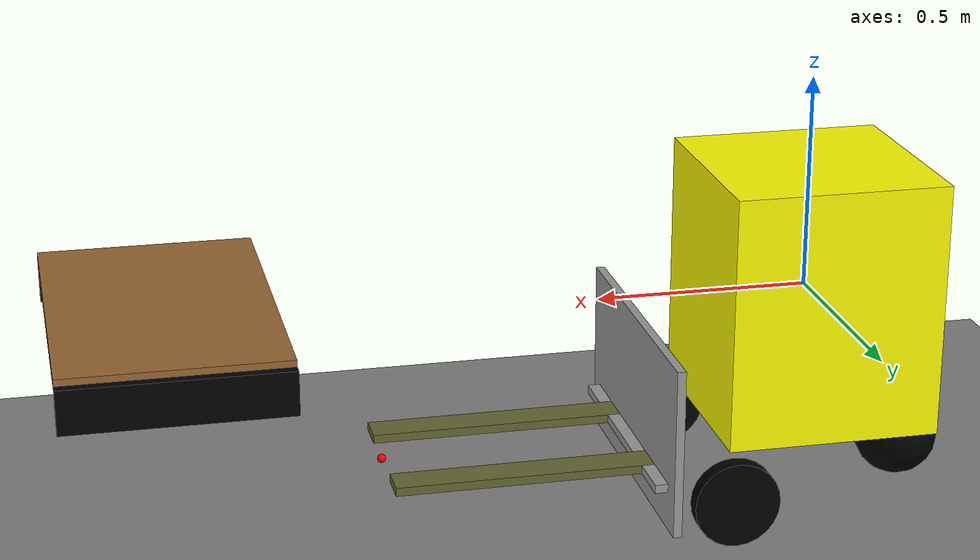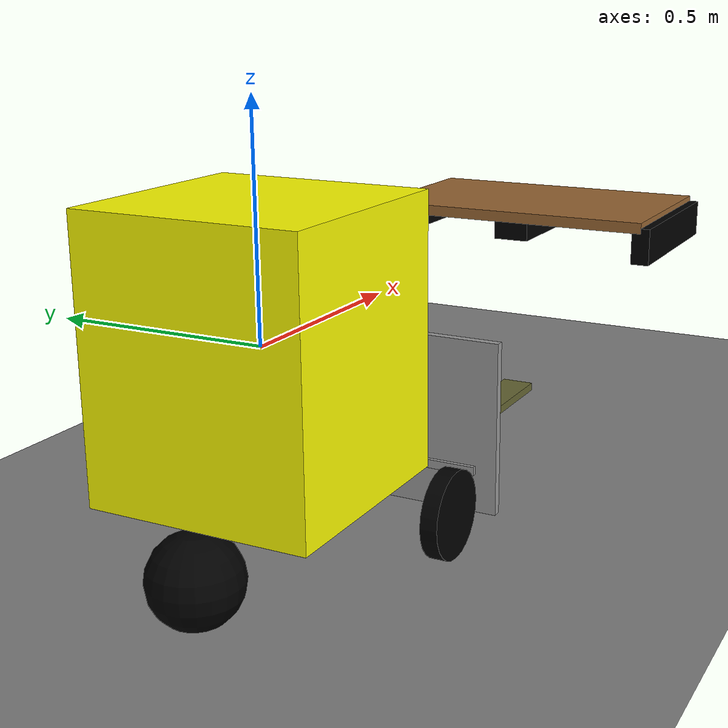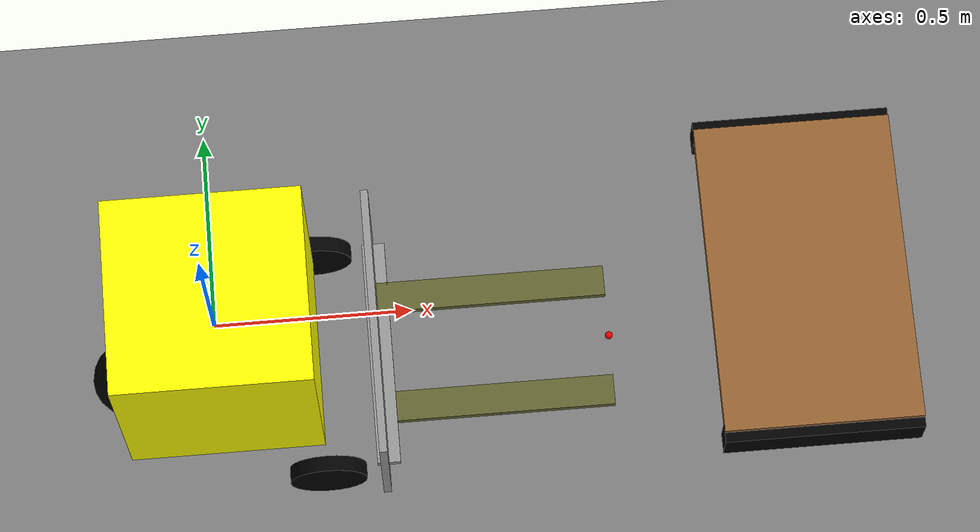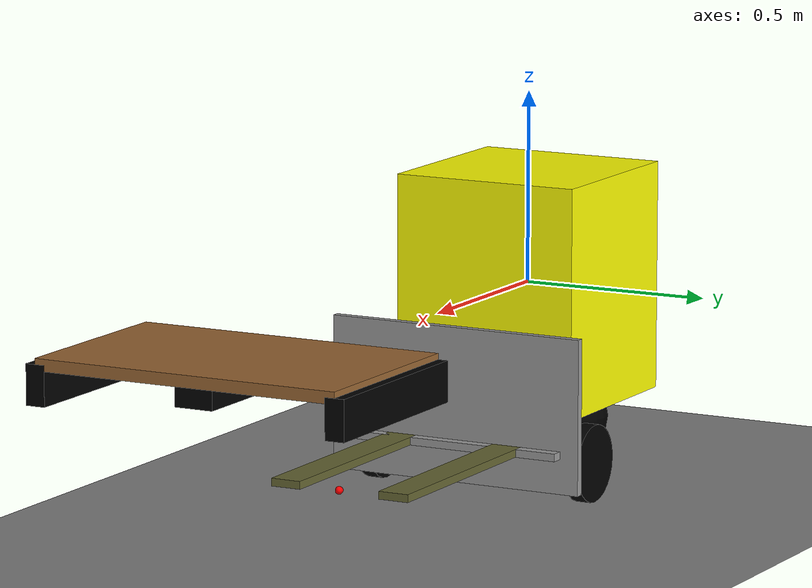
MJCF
<mujoco>
  <option timestep="0.02" density="1.204" viscosity="1.8e-5" integrator="implicit"/>
  <option gravity="0 0 -9.81"/>
  <visual>
    <global elevation="-10"/>
  </visual>
  <default>
    <tendon limited="true" width="0.003" rgba="1 1 1 1"/>
    <geom friction=".2"/>
    <default class="weight">
      <geom rgba=".8 .4 .8 1"/>
      <site rgba=".8 .4 .8 1"/>
    </default>
    <default class="balloon">
      <geom density="0.167" fluidshape="ellipsoid"/>
      <default class="pink">
        <geom rgba="1 .6 .7 1"/>
        <site rgba="1 .6 .7 1"/>
      </default>
      <default class="blue">
        <geom rgba=".3 .7 .9 1"/>
        <site rgba=".3 .7 .9 1"/>
      </default>
      <default class="green">
        <geom rgba=".4 .9 .5 1"/>
        <site rgba=".4 .9 .5 1"/>
      </default>
      <default class="orange">
        <geom rgba="1 .4 0 1"/>
        <site rgba="1 .4 0 1"/>
      </default>
      <default class="black">
        <geom rgba="0 0 0 1"/>
        <site rgba="0 0 0 1"/>
      </default>
      <default class="yellow">
        <geom rgba="1 1 0 1"/>
        <site rgba="1 1 0 1"/>
      </default>

    </default>
  </default>
  <asset>
    <texture name="grid" type="2d" builtin="checker" width="512" height="512" rgb2="0 0 0" rgb1="1 1 1"/>
    <material name="grid" texture="grid" texrepeat="2 2" texuniform="true" reflectance=".6"/>
  </asset>

  <worldbody>
    <geom name="ground" type="plane" size="5 5 .05" pos="0 0 -.5" material="grid"/>
    <body name="pallet" pos="1.5 0 0.0575">
      <freejoint/>
      <geom name="pallet_geom_top" type="box" size="0.25 0.4 0.015" pos="0 0 0.0" mass="0.1" rgba="0.6 0.4 0.2 1" friction="2 0.1 0.1"/>
      <geom name="support_center" type="box" size="0.2 0.05 0.025" pos="0 0 -0.05" mass="0.1" rgba="0 0 0 1"/>
      <geom name="support_left" type="box" size="0.25 0.025 0.05" pos="0 0.4 -0.05" mass="0.1" rgba="0 0 0 1"/>
      <geom name="support_right" type="box" size="0.25 0.025 0.05" pos="0 -0.4 -0.05" mass="0.01" rgba="0 0 0 1"/>
    </body>

    <!-- 本体（ベース） -->
    <body name="forklift_base" pos="0 0 0.0" childclass="yellow">
      <freejoint/>
      <geom name="base" type="box" size="0.25 0.25 0.3" mass="80.0"/>
      <body name="body_guard" pos="0.4 0 -0.25" euler="0 0 0">
        <geom name="body_guard_frame" type="box" size="0.01 0.35 0.2" rgba="0.6 0.6 0.6 1"/>
      </body>

      <!-- フォークリフト機構 -->
      <body name="lift_arm" pos="0.41 0 -0.35" euler="0 0 0">
        <joint name="lift_joint" type="slide" axis="0 0 1" range="-0.1 0.3" damping="0.1" stiffness="1" />
        <geom name="lift_frame" type="box" size="0.03 0.3 0.01" rgba="0.6 0.6 0.6 1"/>

        <!-- フォーク部分 -->
        <body name="forks" pos="0.3 0 0.0" euler="0 90 0">
          <geom name="left_fork"  type="box" size="0.01 0.04 0.3" pos="0 0.15 0" rgba="0.4 0.4 0.2 1" mass="1.0" friction="3 0.2 0.1"/>
          <geom name="right_fork" type="box" size="0.01 0.04 0.3" pos="0 -0.15 0" rgba="0.4 0.4 0.2 1" mass="1.0" friction="3 0.2 0.1"/>
          <site name="fork_tip" pos="0 0 0.3" size="0.01" rgba="1 0 0 1"/>
        </body>
      </body>

      <!-- 前輪 -->
      <body name="left_wheel" pos="0.25 0.3 -0.4" euler="90 0 0" childclass="black">
        <joint name="left_wheel_hinge" type="hinge" axis="0 0 -1" damping="0.1"/>
        <geom name="left_wheel_geom" type="cylinder" size="0.1 0.02" density="800" friction="1.2"/>
      </body>

      <body name="right_wheel" pos="0.25 -0.3 -0.4" euler="90 0 0" childclass="black">
        <joint name="right_wheel_hinge" type="hinge" axis="0 0 -1" damping="0.1"/>
        <geom name="right_wheel_geom" type="cylinder" size="0.1 0.02" density="800" friction="1.2"/>
      </body>

      <!-- 後輪 -->
      <body name="back_castor" pos="-0.25 0 -0.4" childclass="black">
        <joint name="castor_yaw" type="hinge" axis="0 0 1" damping="0.1"/>
        <joint name="castor_pitch" type="hinge" axis="0 1 0" damping="0.1"/>
        <joint name="castor_roll" type="hinge" axis="1 0 0" damping="0.1"/>
        <geom name="castor" type="sphere" size="0.1" density="500" friction="0.5"/>
      </body>

    </body>
  </worldbody>
  <actuator>
    <!-- 左モーター（初期値5.0で回転） -->
    <motor name="left_motor" joint="left_wheel_hinge" ctrllimited="true" ctrlrange="-10 10"  gear = "1.0"/>

    <!-- 右モーター（初期値5.0で回転） -->
    <motor name="right_motor" joint="right_wheel_hinge" ctrllimited="true" ctrlrange="-10 10"  gear = "1.0"/>

    <motor name="lift_motor" joint="lift_joint" ctrllimited="true" ctrlrange="-0.1 1.0" gear="100.0"/>
  </actuator>
</mujoco>
